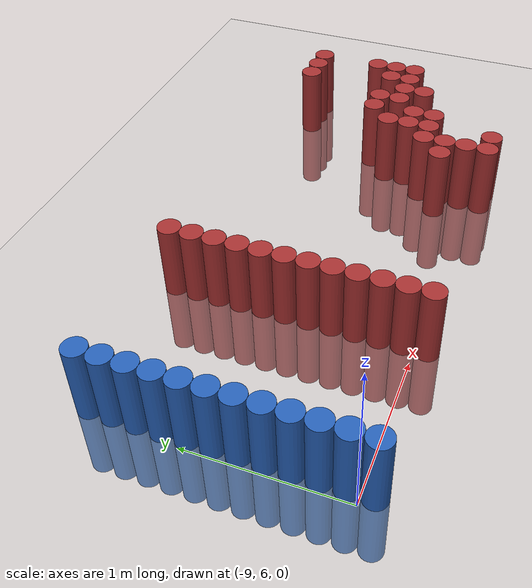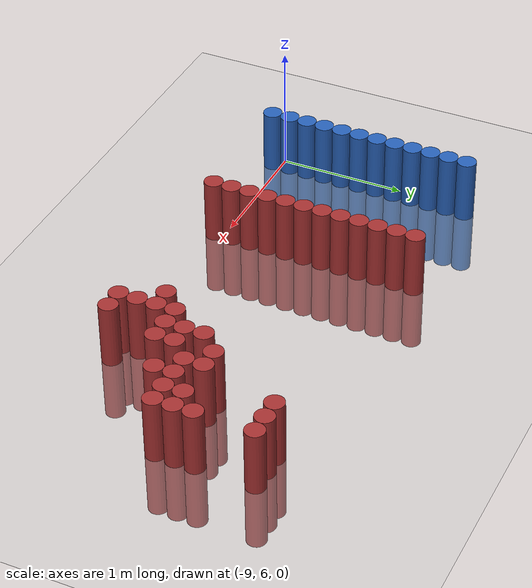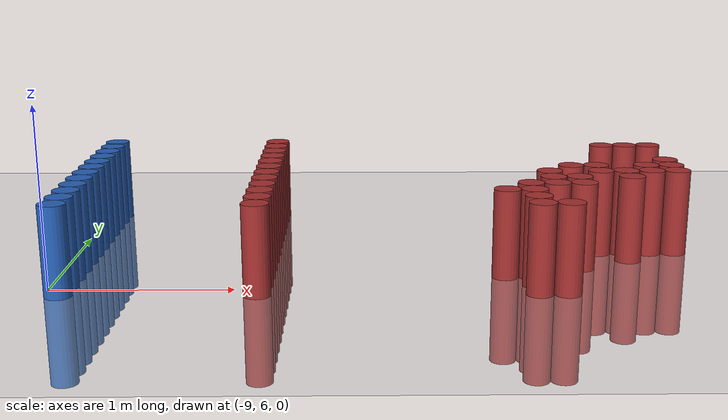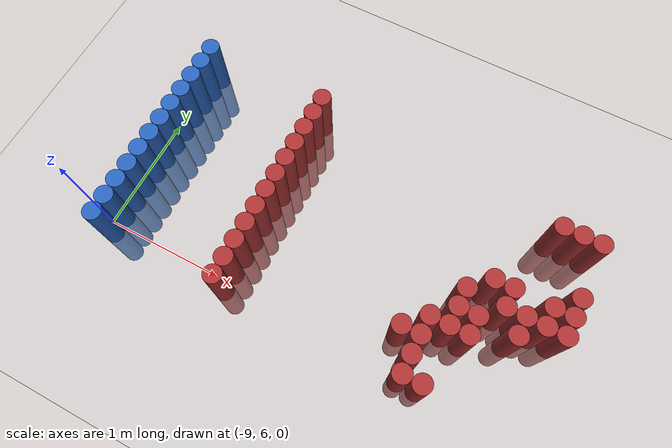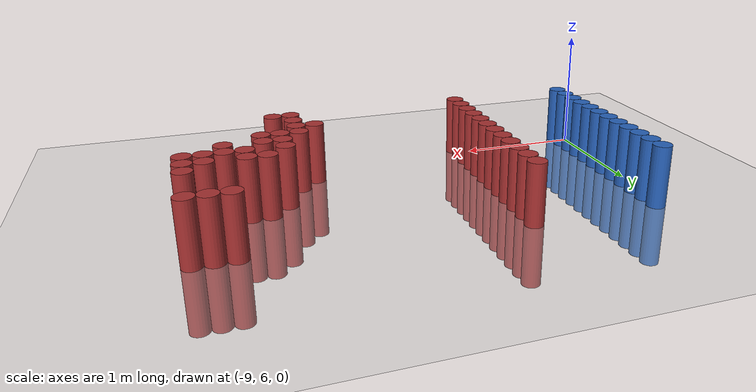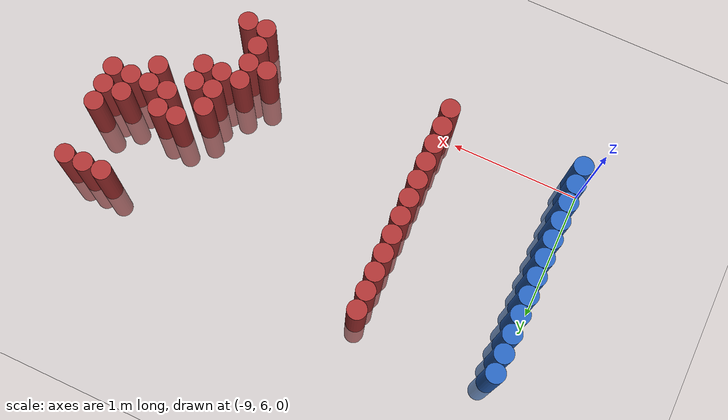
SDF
<sdf version="1.6">
 <world name="default">
  <model name="ground_plane">
   <static>1</static>
   <link name="link">
    <collision name="collision">
     <geometry><plane><normal>0 0 1</normal><size>100 100</size></plane></geometry>
     <surface><friction><ode><mu>100</mu><mu2>50</mu2></ode></friction></surface>
    </collision>
    <visual name="visual">
     <cast_shadows>0</cast_shadows>
     <geometry><plane><normal>0 0 1</normal><size>100 100</size></plane></geometry>
     <material>
      <script><uri>file://media/materials/scripts/gazebo.material</uri><name>Gazebo/Grey</name></script>
     </material>
    </visual>
   </link>
  </model>
  <model name="unit_cylinder_130">
   <static>1</static>
   <pose>-8.925000 5.925000 0.000000 0.000000 0.000000 0.000000</pose>
   <link name="link">
    <inertial>
     <mass>1</mass>
     <inertia><ixx>0.145833</ixx><ixy>0</ixy><ixz>0</ixz><iyy>0.145833</iyy><iyz>0</iyz><izz>0.125</izz></inertia>
    </inertial>
    <collision name="collision">
     <geometry><cylinder><radius>0.075000</radius><length>1</length></cylinder></geometry>
    </collision>
    <visual name="visual">
     <geometry><cylinder><radius>0.075000</radius><length>1</length></cylinder></geometry>
     <material>
      <ambient>0.152000 0.379000 0.720000 1</ambient>
      <diffuse>0.152000 0.379000 0.720000 1</diffuse>
     </material>
     <material>
      <script><name>Gazebo/Grey</name><uri>file://media/materials/scripts/gazebo.material</uri></script>
     </material>
    </visual>
   </link>
  </model>
  <model name="unit_cylinder_131">
   <static>1</static>
   <pose>-8.925000 6.075000 0.000000 0.000000 0.000000 0.000000</pose>
   <link name="link">
    <inertial>
     <mass>1</mass>
     <inertia><ixx>0.145833</ixx><ixy>0</ixy><ixz>0</ixz><iyy>0.145833</iyy><iyz>0</iyz><izz>0.125</izz></inertia>
    </inertial>
    <collision name="collision">
     <geometry><cylinder><radius>0.075000</radius><length>1</length></cylinder></geometry>
    </collision>
    <visual name="visual">
     <geometry><cylinder><radius>0.075000</radius><length>1</length></cylinder></geometry>
     <material>
      <ambient>0.152000 0.379000 0.720000 1</ambient>
      <diffuse>0.152000 0.379000 0.720000 1</diffuse>
     </material>
     <material>
      <script><name>Gazebo/Grey</name><uri>file://media/materials/scripts/gazebo.material</uri></script>
     </material>
    </visual>
   </link>
  </model>
  <model name="unit_cylinder_132">
   <static>1</static>
   <pose>-8.925000 6.225000 0.000000 0.000000 0.000000 0.000000</pose>
   <link name="link">
    <inertial>
     <mass>1</mass>
     <inertia><ixx>0.145833</ixx><ixy>0</ixy><ixz>0</ixz><iyy>0.145833</iyy><iyz>0</iyz><izz>0.125</izz></inertia>
    </inertial>
    <collision name="collision">
     <geometry><cylinder><radius>0.075000</radius><length>1</length></cylinder></geometry>
    </collision>
    <visual name="visual">
     <geometry><cylinder><radius>0.075000</radius><length>1</length></cylinder></geometry>
     <material>
      <ambient>0.152000 0.379000 0.720000 1</ambient>
      <diffuse>0.152000 0.379000 0.720000 1</diffuse>
     </material>
     <material>
      <script><name>Gazebo/Grey</name><uri>file://media/materials/scripts/gazebo.material</uri></script>
     </material>
    </visual>
   </link>
  </model>
  <model name="unit_cylinder_133">
   <static>1</static>
   <pose>-8.925000 6.375000 0.000000 0.000000 0.000000 0.000000</pose>
   <link name="link">
    <inertial>
     <mass>1</mass>
     <inertia><ixx>0.145833</ixx><ixy>0</ixy><ixz>0</ixz><iyy>0.145833</iyy><iyz>0</iyz><izz>0.125</izz></inertia>
    </inertial>
    <collision name="collision">
     <geometry><cylinder><radius>0.075000</radius><length>1</length></cylinder></geometry>
    </collision>
    <visual name="visual">
     <geometry><cylinder><radius>0.075000</radius><length>1</length></cylinder></geometry>
     <material>
      <ambient>0.152000 0.379000 0.720000 1</ambient>
      <diffuse>0.152000 0.379000 0.720000 1</diffuse>
     </material>
     <material>
      <script><name>Gazebo/Grey</name><uri>file://media/materials/scripts/gazebo.material</uri></script>
     </material>
    </visual>
   </link>
  </model>
  <model name="unit_cylinder_134">
   <static>1</static>
   <pose>-8.925000 6.525000 0.000000 0.000000 0.000000 0.000000</pose>
   <link name="link">
    <inertial>
     <mass>1</mass>
     <inertia><ixx>0.145833</ixx><ixy>0</ixy><ixz>0</ixz><iyy>0.145833</iyy><iyz>0</iyz><izz>0.125</izz></inertia>
    </inertial>
    <collision name="collision">
     <geometry><cylinder><radius>0.075000</radius><length>1</length></cylinder></geometry>
    </collision>
    <visual name="visual">
     <geometry><cylinder><radius>0.075000</radius><length>1</length></cylinder></geometry>
     <material>
      <ambient>0.152000 0.379000 0.720000 1</ambient>
      <diffuse>0.152000 0.379000 0.720000 1</diffuse>
     </material>
     <material>
      <script><name>Gazebo/Grey</name><uri>file://media/materials/scripts/gazebo.material</uri></script>
     </material>
    </visual>
   </link>
  </model>
  <model name="unit_cylinder_135">
   <static>1</static>
   <pose>-8.925000 6.675000 0.000000 0.000000 0.000000 0.000000</pose>
   <link name="link">
    <inertial>
     <mass>1</mass>
     <inertia><ixx>0.145833</ixx><ixy>0</ixy><ixz>0</ixz><iyy>0.145833</iyy><iyz>0</iyz><izz>0.125</izz></inertia>
    </inertial>
    <collision name="collision">
     <geometry><cylinder><radius>0.075000</radius><length>1</length></cylinder></geometry>
    </collision>
    <visual name="visual">
     <geometry><cylinder><radius>0.075000</radius><length>1</length></cylinder></geometry>
     <material>
      <ambient>0.152000 0.379000 0.720000 1</ambient>
      <diffuse>0.152000 0.379000 0.720000 1</diffuse>
     </material>
     <material>
      <script><name>Gazebo/Grey</name><uri>file://media/materials/scripts/gazebo.material</uri></script>
     </material>
    </visual>
   </link>
  </model>
  <model name="unit_cylinder_136">
   <static>1</static>
   <pose>-8.925000 6.825000 0.000000 0.000000 0.000000 0.000000</pose>
   <link name="link">
    <inertial>
     <mass>1</mass>
     <inertia><ixx>0.145833</ixx><ixy>0</ixy><ixz>0</ixz><iyy>0.145833</iyy><iyz>0</iyz><izz>0.125</izz></inertia>
    </inertial>
    <collision name="collision">
     <geometry><cylinder><radius>0.075000</radius><length>1</length></cylinder></geometry>
    </collision>
    <visual name="visual">
     <geometry><cylinder><radius>0.075000</radius><length>1</length></cylinder></geometry>
     <material>
      <ambient>0.152000 0.379000 0.720000 1</ambient>
      <diffuse>0.152000 0.379000 0.720000 1</diffuse>
     </material>
     <material>
      <script><name>Gazebo/Grey</name><uri>file://media/materials/scripts/gazebo.material</uri></script>
     </material>
    </visual>
   </link>
  </model>
  <model name="unit_cylinder_137">
   <static>1</static>
   <pose>-8.925000 6.975000 0.000000 0.000000 0.000000 0.000000</pose>
   <link name="link">
    <inertial>
     <mass>1</mass>
     <inertia><ixx>0.145833</ixx><ixy>0</ixy><ixz>0</ixz><iyy>0.145833</iyy><iyz>0</iyz><izz>0.125</izz></inertia>
    </inertial>
    <collision name="collision">
     <geometry><cylinder><radius>0.075000</radius><length>1</length></cylinder></geometry>
    </collision>
    <visual name="visual">
     <geometry><cylinder><radius>0.075000</radius><length>1</length></cylinder></geometry>
     <material>
      <ambient>0.152000 0.379000 0.720000 1</ambient>
      <diffuse>0.152000 0.379000 0.720000 1</diffuse>
     </material>
     <material>
      <script><name>Gazebo/Grey</name><uri>file://media/materials/scripts/gazebo.material</uri></script>
     </material>
    </visual>
   </link>
  </model>
  <model name="unit_cylinder_138">
   <static>1</static>
   <pose>-8.925000 7.125000 0.000000 0.000000 0.000000 0.000000</pose>
   <link name="link">
    <inertial>
     <mass>1</mass>
     <inertia><ixx>0.145833</ixx><ixy>0</ixy><ixz>0</ixz><iyy>0.145833</iyy><iyz>0</iyz><izz>0.125</izz></inertia>
    </inertial>
    <collision name="collision">
     <geometry><cylinder><radius>0.075000</radius><length>1</length></cylinder></geometry>
    </collision>
    <visual name="visual">
     <geometry><cylinder><radius>0.075000</radius><length>1</length></cylinder></geometry>
     <material>
      <ambient>0.152000 0.379000 0.720000 1</ambient>
      <diffuse>0.152000 0.379000 0.720000 1</diffuse>
     </material>
     <material>
      <script><name>Gazebo/Grey</name><uri>file://media/materials/scripts/gazebo.material</uri></script>
     </material>
    </visual>
   </link>
  </model>
  <model name="unit_cylinder_139">
   <static>1</static>
   <pose>-8.925000 7.275000 0.000000 0.000000 0.000000 0.000000</pose>
   <link name="link">
    <inertial>
     <mass>1</mass>
     <inertia><ixx>0.145833</ixx><ixy>0</ixy><ixz>0</ixz><iyy>0.145833</iyy><iyz>0</iyz><izz>0.125</izz></inertia>
    </inertial>
    <collision name="collision">
     <geometry><cylinder><radius>0.075000</radius><length>1</length></cylinder></geometry>
    </collision>
    <visual name="visual">
     <geometry><cylinder><radius>0.075000</radius><length>1</length></cylinder></geometry>
     <material>
      <ambient>0.152000 0.379000 0.720000 1</ambient>
      <diffuse>0.152000 0.379000 0.720000 1</diffuse>
     </material>
     <material>
      <script><name>Gazebo/Grey</name><uri>file://media/materials/scripts/gazebo.material</uri></script>
     </material>
    </visual>
   </link>
  </model>
  <model name="unit_cylinder_140">
   <static>1</static>
   <pose>-8.925000 7.425000 0.000000 0.000000 0.000000 0.000000</pose>
   <link name="link">
    <inertial>
     <mass>1</mass>
     <inertia><ixx>0.145833</ixx><ixy>0</ixy><ixz>0</ixz><iyy>0.145833</iyy><iyz>0</iyz><izz>0.125</izz></inertia>
    </inertial>
    <collision name="collision">
     <geometry><cylinder><radius>0.075000</radius><length>1</length></cylinder></geometry>
    </collision>
    <visual name="visual">
     <geometry><cylinder><radius>0.075000</radius><length>1</length></cylinder></geometry>
     <material>
      <ambient>0.152000 0.379000 0.720000 1</ambient>
      <diffuse>0.152000 0.379000 0.720000 1</diffuse>
     </material>
     <material>
      <script><name>Gazebo/Grey</name><uri>file://media/materials/scripts/gazebo.material</uri></script>
     </material>
    </visual>
   </link>
  </model>
  <model name="unit_cylinder_141">
   <static>1</static>
   <pose>-8.925000 7.575000 0.000000 0.000000 0.000000 0.000000</pose>
   <link name="link">
    <inertial>
     <mass>1</mass>
     <inertia><ixx>0.145833</ixx><ixy>0</ixy><ixz>0</ixz><iyy>0.145833</iyy><iyz>0</iyz><izz>0.125</izz></inertia>
    </inertial>
    <collision name="collision">
     <geometry><cylinder><radius>0.075000</radius><length>1</length></cylinder></geometry>
    </collision>
    <visual name="visual">
     <geometry><cylinder><radius>0.075000</radius><length>1</length></cylinder></geometry>
     <material>
      <ambient>0.152000 0.379000 0.720000 1</ambient>
      <diffuse>0.152000 0.379000 0.720000 1</diffuse>
     </material>
     <material>
      <script><name>Gazebo/Grey</name><uri>file://media/materials/scripts/gazebo.material</uri></script>
     </material>
    </visual>
   </link>
  </model>
  <model name="unit_cylinder_172">
   <static>1</static>
   <pose>-7.875000 5.925000 0.000000 0.000000 0.000000 0.000000</pose>
   <link name="link">
    <inertial>
     <mass>1</mass>
     <inertia><ixx>0.145833</ixx><ixy>0</ixy><ixz>0</ixz><iyy>0.145833</iyy><iyz>0</iyz><izz>0.125</izz></inertia>
    </inertial>
    <collision name="collision">
     <geometry><cylinder><radius>0.075000</radius><length>1</length></cylinder></geometry>
    </collision>
    <visual name="visual">
     <geometry><cylinder><radius>0.075000</radius><length>1</length></cylinder></geometry>
     <material>
      <ambient>0.648000 0.192000 0.192000 1</ambient>
      <diffuse>0.648000 0.192000 0.192000 1</diffuse>
     </material>
     <material>
      <script><name>Gazebo/Grey</name><uri>file://media/materials/scripts/gazebo.material</uri></script>
     </material>
    </visual>
   </link>
  </model>
  <model name="unit_cylinder_173">
   <static>1</static>
   <pose>-7.875000 6.075000 0.000000 0.000000 0.000000 0.000000</pose>
   <link name="link">
    <inertial>
     <mass>1</mass>
     <inertia><ixx>0.145833</ixx><ixy>0</ixy><ixz>0</ixz><iyy>0.145833</iyy><iyz>0</iyz><izz>0.125</izz></inertia>
    </inertial>
    <collision name="collision">
     <geometry><cylinder><radius>0.075000</radius><length>1</length></cylinder></geometry>
    </collision>
    <visual name="visual">
     <geometry><cylinder><radius>0.075000</radius><length>1</length></cylinder></geometry>
     <material>
      <ambient>0.648000 0.192000 0.192000 1</ambient>
      <diffuse>0.648000 0.192000 0.192000 1</diffuse>
     </material>
     <material>
      <script><name>Gazebo/Grey</name><uri>file://media/materials/scripts/gazebo.material</uri></script>
     </material>
    </visual>
   </link>
  </model>
  <model name="unit_cylinder_174">
   <static>1</static>
   <pose>-7.875000 6.225000 0.000000 0.000000 0.000000 0.000000</pose>
   <link name="link">
    <inertial>
     <mass>1</mass>
     <inertia><ixx>0.145833</ixx><ixy>0</ixy><ixz>0</ixz><iyy>0.145833</iyy><iyz>0</iyz><izz>0.125</izz></inertia>
    </inertial>
    <collision name="collision">
     <geometry><cylinder><radius>0.075000</radius><length>1</length></cylinder></geometry>
    </collision>
    <visual name="visual">
     <geometry><cylinder><radius>0.075000</radius><length>1</length></cylinder></geometry>
     <material>
      <ambient>0.648000 0.192000 0.192000 1</ambient>
      <diffuse>0.648000 0.192000 0.192000 1</diffuse>
     </material>
     <material>
      <script><name>Gazebo/Grey</name><uri>file://media/materials/scripts/gazebo.material</uri></script>
     </material>
    </visual>
   </link>
  </model>
  <model name="unit_cylinder_175">
   <static>1</static>
   <pose>-7.875000 6.375000 0.000000 0.000000 0.000000 0.000000</pose>
   <link name="link">
    <inertial>
     <mass>1</mass>
     <inertia><ixx>0.145833</ixx><ixy>0</ixy><ixz>0</ixz><iyy>0.145833</iyy><iyz>0</iyz><izz>0.125</izz></inertia>
    </inertial>
    <collision name="collision">
     <geometry><cylinder><radius>0.075000</radius><length>1</length></cylinder></geometry>
    </collision>
    <visual name="visual">
     <geometry><cylinder><radius>0.075000</radius><length>1</length></cylinder></geometry>
     <material>
      <ambient>0.648000 0.192000 0.192000 1</ambient>
      <diffuse>0.648000 0.192000 0.192000 1</diffuse>
     </material>
     <material>
      <script><name>Gazebo/Grey</name><uri>file://media/materials/scripts/gazebo.material</uri></script>
     </material>
    </visual>
   </link>
  </model>
  <model name="unit_cylinder_176">
   <static>1</static>
   <pose>-7.875000 6.525000 0.000000 0.000000 0.000000 0.000000</pose>
   <link name="link">
    <inertial>
     <mass>1</mass>
     <inertia><ixx>0.145833</ixx><ixy>0</ixy><ixz>0</ixz><iyy>0.145833</iyy><iyz>0</iyz><izz>0.125</izz></inertia>
    </inertial>
    <collision name="collision">
     <geometry><cylinder><radius>0.075000</radius><length>1</length></cylinder></geometry>
    </collision>
    <visual name="visual">
     <geometry><cylinder><radius>0.075000</radius><length>1</length></cylinder></geometry>
     <material>
      <ambient>0.648000 0.192000 0.192000 1</ambient>
      <diffuse>0.648000 0.192000 0.192000 1</diffuse>
     </material>
     <material>
      <script><name>Gazebo/Grey</name><uri>file://media/materials/scripts/gazebo.material</uri></script>
     </material>
    </visual>
   </link>
  </model>
  <model name="unit_cylinder_177">
   <static>1</static>
   <pose>-7.875000 6.675000 0.000000 0.000000 0.000000 0.000000</pose>
   <link name="link">
    <inertial>
     <mass>1</mass>
     <inertia><ixx>0.145833</ixx><ixy>0</ixy><ixz>0</ixz><iyy>0.145833</iyy><iyz>0</iyz><izz>0.125</izz></inertia>
    </inertial>
    <collision name="collision">
     <geometry><cylinder><radius>0.075000</radius><length>1</length></cylinder></geometry>
    </collision>
    <visual name="visual">
     <geometry><cylinder><radius>0.075000</radius><length>1</length></cylinder></geometry>
     <material>
      <ambient>0.648000 0.192000 0.192000 1</ambient>
      <diffuse>0.648000 0.192000 0.192000 1</diffuse>
     </material>
     <material>
      <script><name>Gazebo/Grey</name><uri>file://media/materials/scripts/gazebo.material</uri></script>
     </material>
    </visual>
   </link>
  </model>
  <model name="unit_cylinder_178">
   <static>1</static>
   <pose>-7.875000 6.825000 0.000000 0.000000 0.000000 0.000000</pose>
   <link name="link">
    <inertial>
     <mass>1</mass>
     <inertia><ixx>0.145833</ixx><ixy>0</ixy><ixz>0</ixz><iyy>0.145833</iyy><iyz>0</iyz><izz>0.125</izz></inertia>
    </inertial>
    <collision name="collision">
     <geometry><cylinder><radius>0.075000</radius><length>1</length></cylinder></geometry>
    </collision>
    <visual name="visual">
     <geometry><cylinder><radius>0.075000</radius><length>1</length></cylinder></geometry>
     <material>
      <ambient>0.648000 0.192000 0.192000 1</ambient>
      <diffuse>0.648000 0.192000 0.192000 1</diffuse>
     </material>
     <material>
      <script><name>Gazebo/Grey</name><uri>file://media/materials/scripts/gazebo.material</uri></script>
     </material>
    </visual>
   </link>
  </model>
  <model name="unit_cylinder_179">
   <static>1</static>
   <pose>-7.875000 6.975000 0.000000 0.000000 0.000000 0.000000</pose>
   <link name="link">
    <inertial>
     <mass>1</mass>
     <inertia><ixx>0.145833</ixx><ixy>0</ixy><ixz>0</ixz><iyy>0.145833</iyy><iyz>0</iyz><izz>0.125</izz></inertia>
    </inertial>
    <collision name="collision">
     <geometry><cylinder><radius>0.075000</radius><length>1</length></cylinder></geometry>
    </collision>
    <visual name="visual">
     <geometry><cylinder><radius>0.075000</radius><length>1</length></cylinder></geometry>
     <material>
      <ambient>0.648000 0.192000 0.192000 1</ambient>
      <diffuse>0.648000 0.192000 0.192000 1</diffuse>
     </material>
     <material>
      <script><name>Gazebo/Grey</name><uri>file://media/materials/scripts/gazebo.material</uri></script>
     </material>
    </visual>
   </link>
  </model>
  <model name="unit_cylinder_180">
   <static>1</static>
   <pose>-7.875000 7.125000 0.000000 0.000000 0.000000 0.000000</pose>
   <link name="link">
    <inertial>
     <mass>1</mass>
     <inertia><ixx>0.145833</ixx><ixy>0</ixy><ixz>0</ixz><iyy>0.145833</iyy><iyz>0</iyz><izz>0.125</izz></inertia>
    </inertial>
    <collision name="collision">
     <geometry><cylinder><radius>0.075000</radius><length>1</length></cylinder></geometry>
    </collision>
    <visual name="visual">
     <geometry><cylinder><radius>0.075000</radius><length>1</length></cylinder></geometry>
     <material>
      <ambient>0.648000 0.192000 0.192000 1</ambient>
      <diffuse>0.648000 0.192000 0.192000 1</diffuse>
     </material>
     <material>
      <script><name>Gazebo/Grey</name><uri>file://media/materials/scripts/gazebo.material</uri></script>
     </material>
    </visual>
   </link>
  </model>
  <model name="unit_cylinder_181">
   <static>1</static>
   <pose>-7.875000 7.275000 0.000000 0.000000 0.000000 0.000000</pose>
   <link name="link">
    <inertial>
     <mass>1</mass>
     <inertia><ixx>0.145833</ixx><ixy>0</ixy><ixz>0</ixz><iyy>0.145833</iyy><iyz>0</iyz><izz>0.125</izz></inertia>
    </inertial>
    <collision name="collision">
     <geometry><cylinder><radius>0.075000</radius><length>1</length></cylinder></geometry>
    </collision>
    <visual name="visual">
     <geometry><cylinder><radius>0.075000</radius><length>1</length></cylinder></geometry>
     <material>
      <ambient>0.648000 0.192000 0.192000 1</ambient>
      <diffuse>0.648000 0.192000 0.192000 1</diffuse>
     </material>
     <material>
      <script><name>Gazebo/Grey</name><uri>file://media/materials/scripts/gazebo.material</uri></script>
     </material>
    </visual>
   </link>
  </model>
  <model name="unit_cylinder_182">
   <static>1</static>
   <pose>-7.875000 7.425000 0.000000 0.000000 0.000000 0.000000</pose>
   <link name="link">
    <inertial>
     <mass>1</mass>
     <inertia><ixx>0.145833</ixx><ixy>0</ixy><ixz>0</ixz><iyy>0.145833</iyy><iyz>0</iyz><izz>0.125</izz></inertia>
    </inertial>
    <collision name="collision">
     <geometry><cylinder><radius>0.075000</radius><length>1</length></cylinder></geometry>
    </collision>
    <visual name="visual">
     <geometry><cylinder><radius>0.075000</radius><length>1</length></cylinder></geometry>
     <material>
      <ambient>0.648000 0.192000 0.192000 1</ambient>
      <diffuse>0.648000 0.192000 0.192000 1</diffuse>
     </material>
     <material>
      <script><name>Gazebo/Grey</name><uri>file://media/materials/scripts/gazebo.material</uri></script>
     </material>
    </visual>
   </link>
  </model>
  <model name="unit_cylinder_183">
   <static>1</static>
   <pose>-7.875000 7.575000 0.000000 0.000000 0.000000 0.000000</pose>
   <link name="link">
    <inertial>
     <mass>1</mass>
     <inertia><ixx>0.145833</ixx><ixy>0</ixy><ixz>0</ixz><iyy>0.145833</iyy><iyz>0</iyz><izz>0.125</izz></inertia>
    </inertial>
    <collision name="collision">
     <geometry><cylinder><radius>0.075000</radius><length>1</length></cylinder></geometry>
    </collision>
    <visual name="visual">
     <geometry><cylinder><radius>0.075000</radius><length>1</length></cylinder></geometry>
     <material>
      <ambient>0.648000 0.192000 0.192000 1</ambient>
      <diffuse>0.648000 0.192000 0.192000 1</diffuse>
     </material>
     <material>
      <script><name>Gazebo/Grey</name><uri>file://media/materials/scripts/gazebo.material</uri></script>
     </material>
    </visual>
   </link>
  </model>
  <model name="unit_cylinder_207">
   <static>1</static>
   <pose>-6.525000 6.225000 0.000000 0.000000 0.000000 0.000000</pose>
   <link name="link">
    <inertial>
     <mass>1</mass>
     <inertia><ixx>0.145833</ixx><ixy>0</ixy><ixz>0</ixz><iyy>0.145833</iyy><iyz>0</iyz><izz>0.125</izz></inertia>
    </inertial>
    <collision name="collision">
     <geometry><cylinder><radius>0.075000</radius><length>1</length></cylinder></geometry>
    </collision>
    <visual name="visual">
     <geometry><cylinder><radius>0.075000</radius><length>1</length></cylinder></geometry>
     <material>
      <ambient>0.648000 0.192000 0.192000 1</ambient>
      <diffuse>0.648000 0.192000 0.192000 1</diffuse>
     </material>
     <material>
      <script><name>Gazebo/Grey</name><uri>file://media/materials/scripts/gazebo.material</uri></script>
     </material>
    </visual>
   </link>
  </model>
  <model name="unit_cylinder_212">
   <static>1</static>
   <pose>-6.375000 5.925000 0.000000 0.000000 0.000000 0.000000</pose>
   <link name="link">
    <inertial>
     <mass>1</mass>
     <inertia><ixx>0.145833</ixx><ixy>0</ixy><ixz>0</ixz><iyy>0.145833</iyy><iyz>0</iyz><izz>0.125</izz></inertia>
    </inertial>
    <collision name="collision">
     <geometry><cylinder><radius>0.075000</radius><length>1</length></cylinder></geometry>
    </collision>
    <visual name="visual">
     <geometry><cylinder><radius>0.075000</radius><length>1</length></cylinder></geometry>
     <material>
      <ambient>0.648000 0.192000 0.192000 1</ambient>
      <diffuse>0.648000 0.192000 0.192000 1</diffuse>
     </material>
     <material>
      <script><name>Gazebo/Grey</name><uri>file://media/materials/scripts/gazebo.material</uri></script>
     </material>
    </visual>
   </link>
  </model>
  <model name="unit_cylinder_213">
   <static>1</static>
   <pose>-6.375000 6.075000 0.000000 0.000000 0.000000 0.000000</pose>
   <link name="link">
    <inertial>
     <mass>1</mass>
     <inertia><ixx>0.145833</ixx><ixy>0</ixy><ixz>0</ixz><iyy>0.145833</iyy><iyz>0</iyz><izz>0.125</izz></inertia>
    </inertial>
    <collision name="collision">
     <geometry><cylinder><radius>0.075000</radius><length>1</length></cylinder></geometry>
    </collision>
    <visual name="visual">
     <geometry><cylinder><radius>0.075000</radius><length>1</length></cylinder></geometry>
     <material>
      <ambient>0.648000 0.192000 0.192000 1</ambient>
      <diffuse>0.648000 0.192000 0.192000 1</diffuse>
     </material>
     <material>
      <script><name>Gazebo/Grey</name><uri>file://media/materials/scripts/gazebo.material</uri></script>
     </material>
    </visual>
   </link>
  </model>
  <model name="unit_cylinder_214">
   <static>1</static>
   <pose>-6.375000 6.225000 0.000000 0.000000 0.000000 0.000000</pose>
   <link name="link">
    <inertial>
     <mass>1</mass>
     <inertia><ixx>0.145833</ixx><ixy>0</ixy><ixz>0</ixz><iyy>0.145833</iyy><iyz>0</iyz><izz>0.125</izz></inertia>
    </inertial>
    <collision name="collision">
     <geometry><cylinder><radius>0.075000</radius><length>1</length></cylinder></geometry>
    </collision>
    <visual name="visual">
     <geometry><cylinder><radius>0.075000</radius><length>1</length></cylinder></geometry>
     <material>
      <ambient>0.648000 0.192000 0.192000 1</ambient>
      <diffuse>0.648000 0.192000 0.192000 1</diffuse>
     </material>
     <material>
      <script><name>Gazebo/Grey</name><uri>file://media/materials/scripts/gazebo.material</uri></script>
     </material>
    </visual>
   </link>
  </model>
  <model name="unit_cylinder_215">
   <static>1</static>
   <pose>-6.375000 6.375000 0.000000 0.000000 0.000000 0.000000</pose>
   <link name="link">
    <inertial>
     <mass>1</mass>
     <inertia><ixx>0.145833</ixx><ixy>0</ixy><ixz>0</ixz><iyy>0.145833</iyy><iyz>0</iyz><izz>0.125</izz></inertia>
    </inertial>
    <collision name="collision">
     <geometry><cylinder><radius>0.075000</radius><length>1</length></cylinder></geometry>
    </collision>
    <visual name="visual">
     <geometry><cylinder><radius>0.075000</radius><length>1</length></cylinder></geometry>
     <material>
      <ambient>0.648000 0.192000 0.192000 1</ambient>
      <diffuse>0.648000 0.192000 0.192000 1</diffuse>
     </material>
     <material>
      <script><name>Gazebo/Grey</name><uri>file://media/materials/scripts/gazebo.material</uri></script>
     </material>
    </visual>
   </link>
  </model>
  <model name="unit_cylinder_218">
   <static>1</static>
   <pose>-6.225000 5.925000 0.000000 0.000000 0.000000 0.000000</pose>
   <link name="link">
    <inertial>
     <mass>1</mass>
     <inertia><ixx>0.145833</ixx><ixy>0</ixy><ixz>0</ixz><iyy>0.145833</iyy><iyz>0</iyz><izz>0.125</izz></inertia>
    </inertial>
    <collision name="collision">
     <geometry><cylinder><radius>0.075000</radius><length>1</length></cylinder></geometry>
    </collision>
    <visual name="visual">
     <geometry><cylinder><radius>0.075000</radius><length>1</length></cylinder></geometry>
     <material>
      <ambient>0.648000 0.192000 0.192000 1</ambient>
      <diffuse>0.648000 0.192000 0.192000 1</diffuse>
     </material>
     <material>
      <script><name>Gazebo/Grey</name><uri>file://media/materials/scripts/gazebo.material</uri></script>
     </material>
    </visual>
   </link>
  </model>
  <model name="unit_cylinder_219">
   <static>1</static>
   <pose>-6.225000 6.375000 0.000000 0.000000 0.000000 0.000000</pose>
   <link name="link">
    <inertial>
     <mass>1</mass>
     <inertia><ixx>0.145833</ixx><ixy>0</ixy><ixz>0</ixz><iyy>0.145833</iyy><iyz>0</iyz><izz>0.125</izz></inertia>
    </inertial>
    <collision name="collision">
     <geometry><cylinder><radius>0.075000</radius><length>1</length></cylinder></geometry>
    </collision>
    <visual name="visual">
     <geometry><cylinder><radius>0.075000</radius><length>1</length></cylinder></geometry>
     <material>
      <ambient>0.648000 0.192000 0.192000 1</ambient>
      <diffuse>0.648000 0.192000 0.192000 1</diffuse>
     </material>
     <material>
      <script><name>Gazebo/Grey</name><uri>file://media/materials/scripts/gazebo.material</uri></script>
     </material>
    </visual>
   </link>
  </model>
  <model name="unit_cylinder_220">
   <static>1</static>
   <pose>-6.225000 6.525000 0.000000 0.000000 0.000000 0.000000</pose>
   <link name="link">
    <inertial>
     <mass>1</mass>
     <inertia><ixx>0.145833</ixx><ixy>0</ixy><ixz>0</ixz><iyy>0.145833</iyy><iyz>0</iyz><izz>0.125</izz></inertia>
    </inertial>
    <collision name="collision">
     <geometry><cylinder><radius>0.075000</radius><length>1</length></cylinder></geometry>
    </collision>
    <visual name="visual">
     <geometry><cylinder><radius>0.075000</radius><length>1</length></cylinder></geometry>
     <material>
      <ambient>0.648000 0.192000 0.192000 1</ambient>
      <diffuse>0.648000 0.192000 0.192000 1</diffuse>
     </material>
     <material>
      <script><name>Gazebo/Grey</name><uri>file://media/materials/scripts/gazebo.material</uri></script>
     </material>
    </visual>
   </link>
  </model>
  <model name="unit_cylinder_221">
   <static>1</static>
   <pose>-6.225000 6.675000 0.000000 0.000000 0.000000 0.000000</pose>
   <link name="link">
    <inertial>
     <mass>1</mass>
     <inertia><ixx>0.145833</ixx><ixy>0</ixy><ixz>0</ixz><iyy>0.145833</iyy><iyz>0</iyz><izz>0.125</izz></inertia>
    </inertial>
    <collision name="collision">
     <geometry><cylinder><radius>0.075000</radius><length>1</length></cylinder></geometry>
    </collision>
    <visual name="visual">
     <geometry><cylinder><radius>0.075000</radius><length>1</length></cylinder></geometry>
     <material>
      <ambient>0.648000 0.192000 0.192000 1</ambient>
      <diffuse>0.648000 0.192000 0.192000 1</diffuse>
     </material>
     <material>
      <script><name>Gazebo/Grey</name><uri>file://media/materials/scripts/gazebo.material</uri></script>
     </material>
    </visual>
   </link>
  </model>
  <model name="unit_cylinder_223">
   <static>1</static>
   <pose>-6.075000 6.375000 0.000000 0.000000 0.000000 0.000000</pose>
   <link name="link">
    <inertial>
     <mass>1</mass>
     <inertia><ixx>0.145833</ixx><ixy>0</ixy><ixz>0</ixz><iyy>0.145833</iyy><iyz>0</iyz><izz>0.125</izz></inertia>
    </inertial>
    <collision name="collision">
     <geometry><cylinder><radius>0.075000</radius><length>1</length></cylinder></geometry>
    </collision>
    <visual name="visual">
     <geometry><cylinder><radius>0.075000</radius><length>1</length></cylinder></geometry>
     <material>
      <ambient>0.648000 0.192000 0.192000 1</ambient>
      <diffuse>0.648000 0.192000 0.192000 1</diffuse>
     </material>
     <material>
      <script><name>Gazebo/Grey</name><uri>file://media/materials/scripts/gazebo.material</uri></script>
     </material>
    </visual>
   </link>
  </model>
  <model name="unit_cylinder_224">
   <static>1</static>
   <pose>-6.075000 6.525000 0.000000 0.000000 0.000000 0.000000</pose>
   <link name="link">
    <inertial>
     <mass>1</mass>
     <inertia><ixx>0.145833</ixx><ixy>0</ixy><ixz>0</ixz><iyy>0.145833</iyy><iyz>0</iyz><izz>0.125</izz></inertia>
    </inertial>
    <collision name="collision">
     <geometry><cylinder><radius>0.075000</radius><length>1</length></cylinder></geometry>
    </collision>
    <visual name="visual">
     <geometry><cylinder><radius>0.075000</radius><length>1</length></cylinder></geometry>
     <material>
      <ambient>0.648000 0.192000 0.192000 1</ambient>
      <diffuse>0.648000 0.192000 0.192000 1</diffuse>
     </material>
     <material>
      <script><name>Gazebo/Grey</name><uri>file://media/materials/scripts/gazebo.material</uri></script>
     </material>
    </visual>
   </link>
  </model>
  <model name="unit_cylinder_225">
   <static>1</static>
   <pose>-6.075000 6.825000 0.000000 0.000000 0.000000 0.000000</pose>
   <link name="link">
    <inertial>
     <mass>1</mass>
     <inertia><ixx>0.145833</ixx><ixy>0</ixy><ixz>0</ixz><iyy>0.145833</iyy><iyz>0</iyz><izz>0.125</izz></inertia>
    </inertial>
    <collision name="collision">
     <geometry><cylinder><radius>0.075000</radius><length>1</length></cylinder></geometry>
    </collision>
    <visual name="visual">
     <geometry><cylinder><radius>0.075000</radius><length>1</length></cylinder></geometry>
     <material>
      <ambient>0.648000 0.192000 0.192000 1</ambient>
      <diffuse>0.648000 0.192000 0.192000 1</diffuse>
     </material>
     <material>
      <script><name>Gazebo/Grey</name><uri>file://media/materials/scripts/gazebo.material</uri></script>
     </material>
    </visual>
   </link>
  </model>
  <model name="unit_cylinder_230">
   <static>1</static>
   <pose>-5.925000 6.675000 0.000000 0.000000 0.000000 0.000000</pose>
   <link name="link">
    <inertial>
     <mass>1</mass>
     <inertia><ixx>0.145833</ixx><ixy>0</ixy><ixz>0</ixz><iyy>0.145833</iyy><iyz>0</iyz><izz>0.125</izz></inertia>
    </inertial>
    <collision name="collision">
     <geometry><cylinder><radius>0.075000</radius><length>1</length></cylinder></geometry>
    </collision>
    <visual name="visual">
     <geometry><cylinder><radius>0.075000</radius><length>1</length></cylinder></geometry>
     <material>
      <ambient>0.648000 0.192000 0.192000 1</ambient>
      <diffuse>0.648000 0.192000 0.192000 1</diffuse>
     </material>
     <material>
      <script><name>Gazebo/Grey</name><uri>file://media/materials/scripts/gazebo.material</uri></script>
     </material>
    </visual>
   </link>
  </model>
  <model name="unit_cylinder_231">
   <static>1</static>
   <pose>-5.925000 6.825000 0.000000 0.000000 0.000000 0.000000</pose>
   <link name="link">
    <inertial>
     <mass>1</mass>
     <inertia><ixx>0.145833</ixx><ixy>0</ixy><ixz>0</ixz><iyy>0.145833</iyy><iyz>0</iyz><izz>0.125</izz></inertia>
    </inertial>
    <collision name="collision">
     <geometry><cylinder><radius>0.075000</radius><length>1</length></cylinder></geometry>
    </collision>
    <visual name="visual">
     <geometry><cylinder><radius>0.075000</radius><length>1</length></cylinder></geometry>
     <material>
      <ambient>0.648000 0.192000 0.192000 1</ambient>
      <diffuse>0.648000 0.192000 0.192000 1</diffuse>
     </material>
     <material>
      <script><name>Gazebo/Grey</name><uri>file://media/materials/scripts/gazebo.material</uri></script>
     </material>
    </visual>
   </link>
  </model>
  <model name="unit_cylinder_237">
   <static>1</static>
   <pose>-5.775000 6.525000 0.000000 0.000000 0.000000 0.000000</pose>
   <link name="link">
    <inertial>
     <mass>1</mass>
     <inertia><ixx>0.145833</ixx><ixy>0</ixy><ixz>0</ixz><iyy>0.145833</iyy><iyz>0</iyz><izz>0.125</izz></inertia>
    </inertial>
    <collision name="collision">
     <geometry><cylinder><radius>0.075000</radius><length>1</length></cylinder></geometry>
    </collision>
    <visual name="visual">
     <geometry><cylinder><radius>0.075000</radius><length>1</length></cylinder></geometry>
     <material>
      <ambient>0.648000 0.192000 0.192000 1</ambient>
      <diffuse>0.648000 0.192000 0.192000 1</diffuse>
     </material>
     <material>
      <script><name>Gazebo/Grey</name><uri>file://media/materials/scripts/gazebo.material</uri></script>
     </material>
    </visual>
   </link>
  </model>
  <model name="unit_cylinder_238">
   <static>1</static>
   <pose>-5.775000 6.675000 0.000000 0.000000 0.000000 0.000000</pose>
   <link name="link">
    <inertial>
     <mass>1</mass>
     <inertia><ixx>0.145833</ixx><ixy>0</ixy><ixz>0</ixz><iyy>0.145833</iyy><iyz>0</iyz><izz>0.125</izz></inertia>
    </inertial>
    <collision name="collision">
     <geometry><cylinder><radius>0.075000</radius><length>1</length></cylinder></geometry>
    </collision>
    <visual name="visual">
     <geometry><cylinder><radius>0.075000</radius><length>1</length></cylinder></geometry>
     <material>
      <ambient>0.648000 0.192000 0.192000 1</ambient>
      <diffuse>0.648000 0.192000 0.192000 1</diffuse>
     </material>
     <material>
      <script><name>Gazebo/Grey</name><uri>file://media/materials/scripts/gazebo.material</uri></script>
     </material>
    </visual>
   </link>
  </model>
  <model name="unit_cylinder_239">
   <static>1</static>
   <pose>-5.775000 7.425000 0.000000 0.000000 0.000000 0.000000</pose>
   <link name="link">
    <inertial>
     <mass>1</mass>
     <inertia><ixx>0.145833</ixx><ixy>0</ixy><ixz>0</ixz><iyy>0.145833</iyy><iyz>0</iyz><izz>0.125</izz></inertia>
    </inertial>
    <collision name="collision">
     <geometry><cylinder><radius>0.075000</radius><length>1</length></cylinder></geometry>
    </collision>
    <visual name="visual">
     <geometry><cylinder><radius>0.075000</radius><length>1</length></cylinder></geometry>
     <material>
      <ambient>0.648000 0.192000 0.192000 1</ambient>
      <diffuse>0.648000 0.192000 0.192000 1</diffuse>
     </material>
     <material>
      <script><name>Gazebo/Grey</name><uri>file://media/materials/scripts/gazebo.material</uri></script>
     </material>
    </visual>
   </link>
  </model>
  <model name="unit_cylinder_242">
   <static>1</static>
   <pose>-5.625000 6.675000 0.000000 0.000000 0.000000 0.000000</pose>
   <link name="link">
    <inertial>
     <mass>1</mass>
     <inertia><ixx>0.145833</ixx><ixy>0</ixy><ixz>0</ixz><iyy>0.145833</iyy><iyz>0</iyz><izz>0.125</izz></inertia>
    </inertial>
    <collision name="collision">
     <geometry><cylinder><radius>0.075000</radius><length>1</length></cylinder></geometry>
    </collision>
    <visual name="visual">
     <geometry><cylinder><radius>0.075000</radius><length>1</length></cylinder></geometry>
     <material>
      <ambient>0.648000 0.192000 0.192000 1</ambient>
      <diffuse>0.648000 0.192000 0.192000 1</diffuse>
     </material>
     <material>
      <script><name>Gazebo/Grey</name><uri>file://media/materials/scripts/gazebo.material</uri></script>
     </material>
    </visual>
   </link>
  </model>
  <model name="unit_cylinder_243">
   <static>1</static>
   <pose>-5.625000 6.825000 0.000000 0.000000 0.000000 0.000000</pose>
   <link name="link">
    <inertial>
     <mass>1</mass>
     <inertia><ixx>0.145833</ixx><ixy>0</ixy><ixz>0</ixz><iyy>0.145833</iyy><iyz>0</iyz><izz>0.125</izz></inertia>
    </inertial>
    <collision name="collision">
     <geometry><cylinder><radius>0.075000</radius><length>1</length></cylinder></geometry>
    </collision>
    <visual name="visual">
     <geometry><cylinder><radius>0.075000</radius><length>1</length></cylinder></geometry>
     <material>
      <ambient>0.648000 0.192000 0.192000 1</ambient>
      <diffuse>0.648000 0.192000 0.192000 1</diffuse>
     </material>
     <material>
      <script><name>Gazebo/Grey</name><uri>file://media/materials/scripts/gazebo.material</uri></script>
     </material>
    </visual>
   </link>
  </model>
  <model name="unit_cylinder_244">
   <static>1</static>
   <pose>-5.625000 7.425000 0.000000 0.000000 0.000000 0.000000</pose>
   <link name="link">
    <inertial>
     <mass>1</mass>
     <inertia><ixx>0.145833</ixx><ixy>0</ixy><ixz>0</ixz><iyy>0.145833</iyy><iyz>0</iyz><izz>0.125</izz></inertia>
    </inertial>
    <collision name="collision">
     <geometry><cylinder><radius>0.075000</radius><length>1</length></cylinder></geometry>
    </collision>
    <visual name="visual">
     <geometry><cylinder><radius>0.075000</radius><length>1</length></cylinder></geometry>
     <material>
      <ambient>0.648000 0.192000 0.192000 1</ambient>
      <diffuse>0.648000 0.192000 0.192000 1</diffuse>
     </material>
     <material>
      <script><name>Gazebo/Grey</name><uri>file://media/materials/scripts/gazebo.material</uri></script>
     </material>
    </visual>
   </link>
  </model>
  <model name="unit_cylinder_247">
   <static>1</static>
   <pose>-5.475000 6.675000 0.000000 0.000000 0.000000 0.000000</pose>
   <link name="link">
    <inertial>
     <mass>1</mass>
     <inertia><ixx>0.145833</ixx><ixy>0</ixy><ixz>0</ixz><iyy>0.145833</iyy><iyz>0</iyz><izz>0.125</izz></inertia>
    </inertial>
    <collision name="collision">
     <geometry><cylinder><radius>0.075000</radius><length>1</length></cylinder></geometry>
    </collision>
    <visual name="visual">
     <geometry><cylinder><radius>0.075000</radius><length>1</length></cylinder></geometry>
     <material>
      <ambient>0.648000 0.192000 0.192000 1</ambient>
      <diffuse>0.648000 0.192000 0.192000 1</diffuse>
     </material>
     <material>
      <script><name>Gazebo/Grey</name><uri>file://media/materials/scripts/gazebo.material</uri></script>
     </material>
    </visual>
   </link>
  </model>
  <model name="unit_cylinder_248">
   <static>1</static>
   <pose>-5.475000 6.825000 0.000000 0.000000 0.000000 0.000000</pose>
   <link name="link">
    <inertial>
     <mass>1</mass>
     <inertia><ixx>0.145833</ixx><ixy>0</ixy><ixz>0</ixz><iyy>0.145833</iyy><iyz>0</iyz><izz>0.125</izz></inertia>
    </inertial>
    <collision name="collision">
     <geometry><cylinder><radius>0.075000</radius><length>1</length></cylinder></geometry>
    </collision>
    <visual name="visual">
     <geometry><cylinder><radius>0.075000</radius><length>1</length></cylinder></geometry>
     <material>
      <ambient>0.648000 0.192000 0.192000 1</ambient>
      <diffuse>0.648000 0.192000 0.192000 1</diffuse>
     </material>
     <material>
      <script><name>Gazebo/Grey</name><uri>file://media/materials/scripts/gazebo.material</uri></script>
     </material>
    </visual>
   </link>
  </model>
  <model name="unit_cylinder_249">
   <static>1</static>
   <pose>-5.475000 6.975000 0.000000 0.000000 0.000000 0.000000</pose>
   <link name="link">
    <inertial>
     <mass>1</mass>
     <inertia><ixx>0.145833</ixx><ixy>0</ixy><ixz>0</ixz><iyy>0.145833</iyy><iyz>0</iyz><izz>0.125</izz></inertia>
    </inertial>
    <collision name="collision">
     <geometry><cylinder><radius>0.075000</radius><length>1</length></cylinder></geometry>
    </collision>
    <visual name="visual">
     <geometry><cylinder><radius>0.075000</radius><length>1</length></cylinder></geometry>
     <material>
      <ambient>0.648000 0.192000 0.192000 1</ambient>
      <diffuse>0.648000 0.192000 0.192000 1</diffuse>
     </material>
     <material>
      <script><name>Gazebo/Grey</name><uri>file://media/materials/scripts/gazebo.material</uri></script>
     </material>
    </visual>
   </link>
  </model>
  <model name="unit_cylinder_250">
   <static>1</static>
   <pose>-5.475000 7.425000 0.000000 0.000000 0.000000 0.000000</pose>
   <link name="link">
    <inertial>
     <mass>1</mass>
     <inertia><ixx>0.145833</ixx><ixy>0</ixy><ixz>0</ixz><iyy>0.145833</iyy><iyz>0</iyz><izz>0.125</izz></inertia>
    </inertial>
    <collision name="collision">
     <geometry><cylinder><radius>0.075000</radius><length>1</length></cylinder></geometry>
    </collision>
    <visual name="visual">
     <geometry><cylinder><radius>0.075000</radius><length>1</length></cylinder></geometry>
     <material>
      <ambient>0.648000 0.192000 0.192000 1</ambient>
      <diffuse>0.648000 0.192000 0.192000 1</diffuse>
     </material>
     <material>
      <script><name>Gazebo/Grey</name><uri>file://media/materials/scripts/gazebo.material</uri></script>
     </material>
    </visual>
   </link>
  </model>
 </world>
</sdf>
